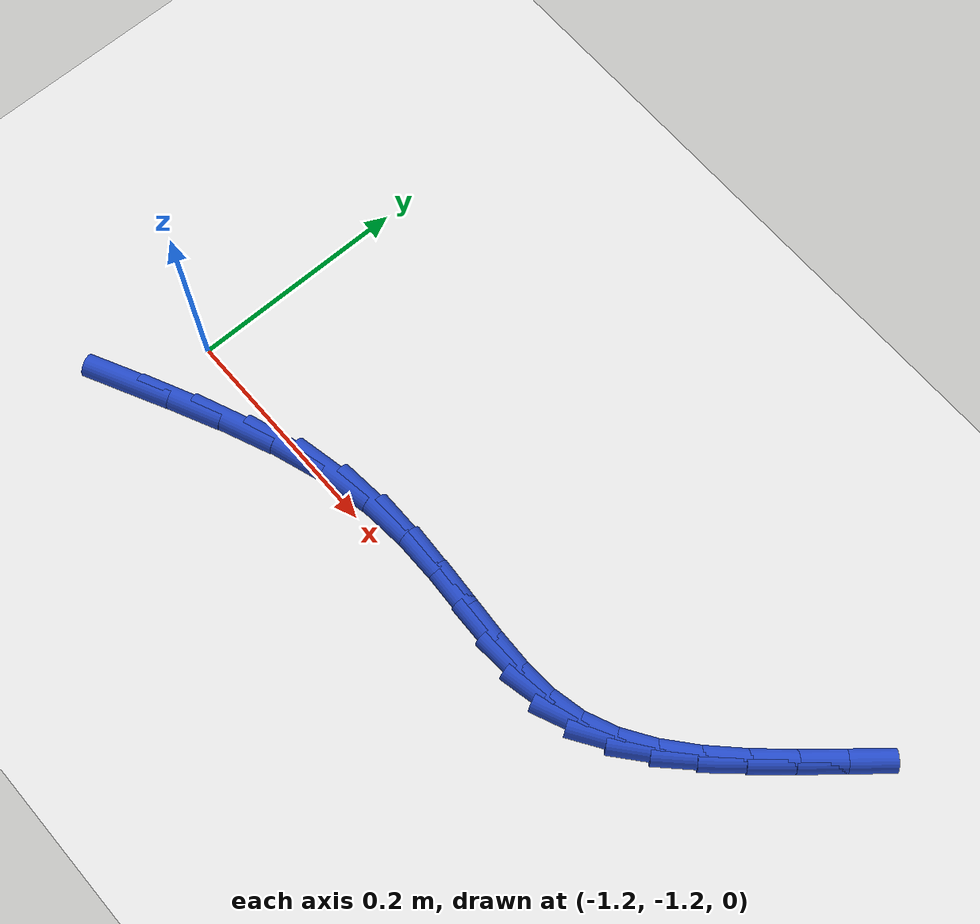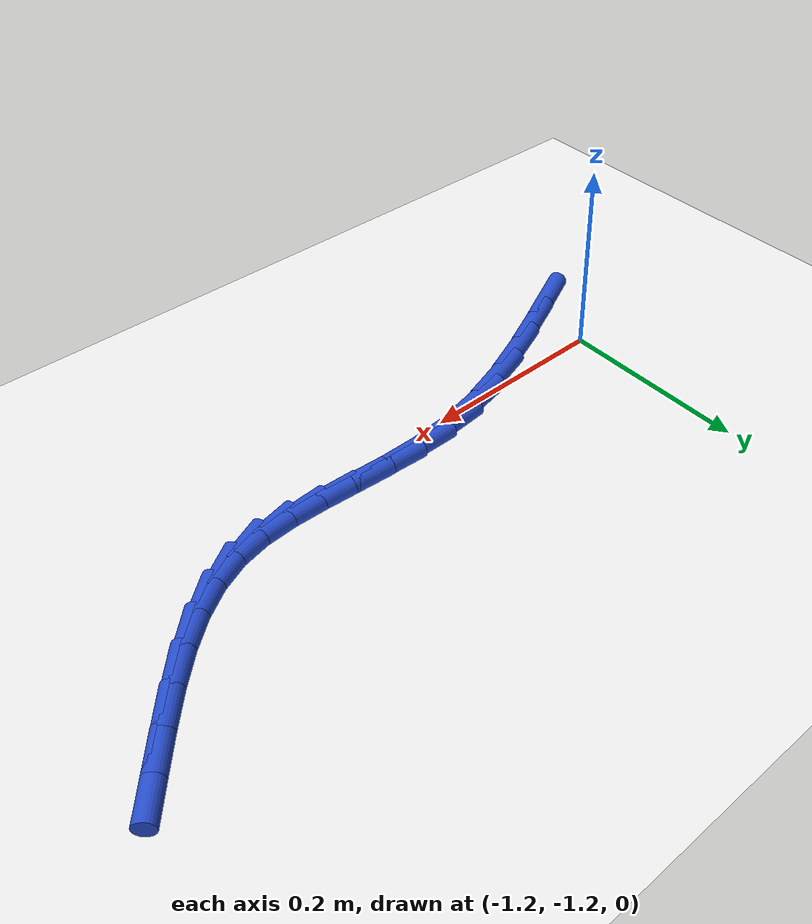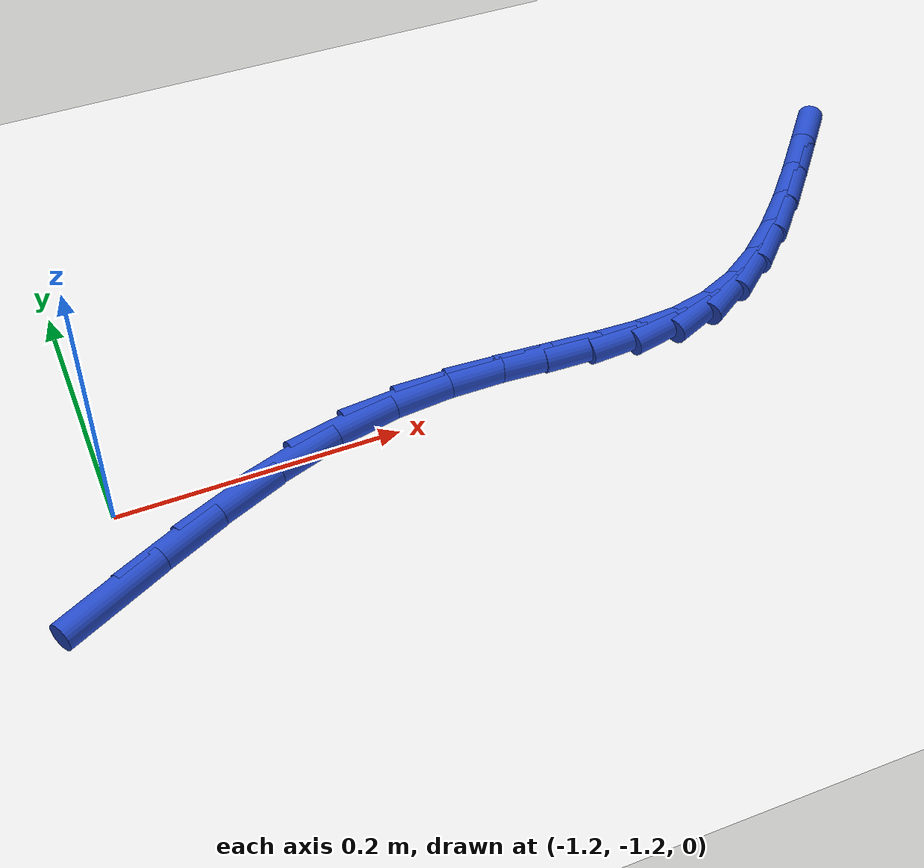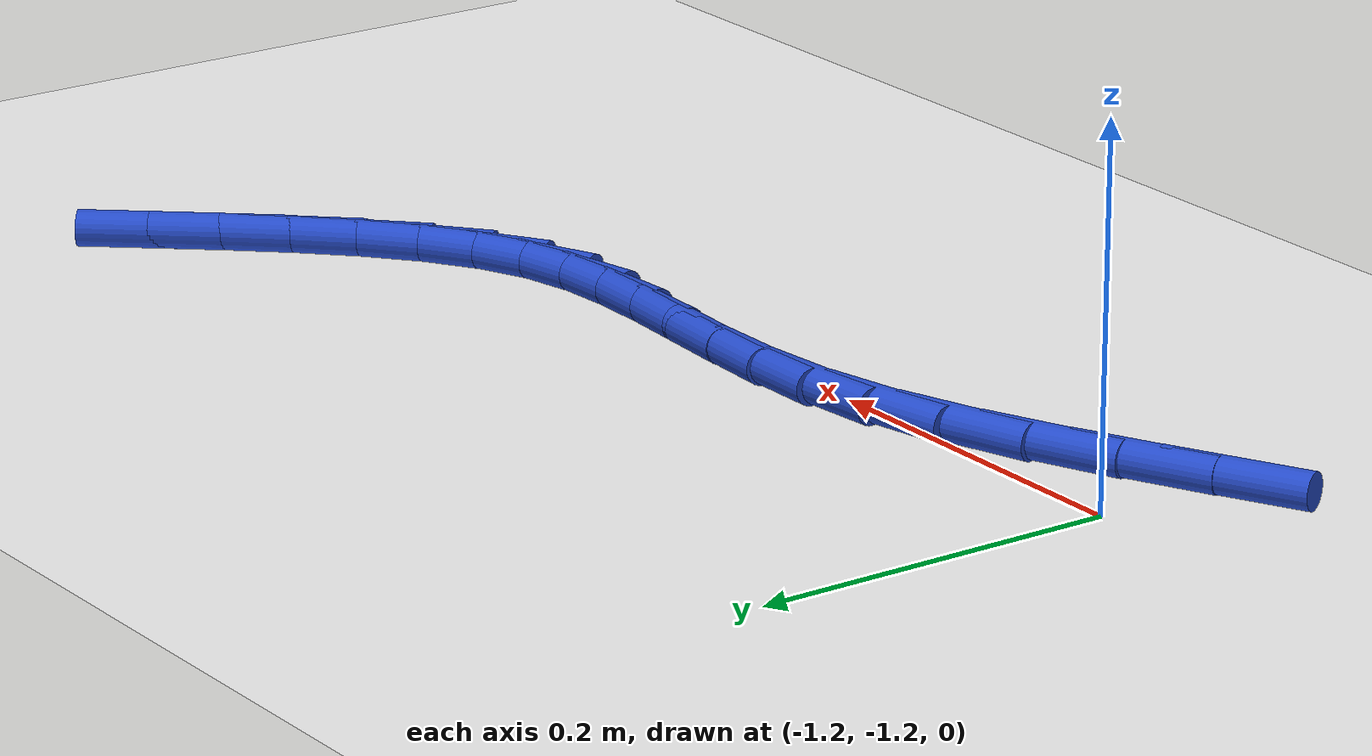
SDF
<sdf version="1.6">
 <world name="default">
  <model name="ground_plane">
   <static>1</static>
   <link name="link">
    <collision name="collision">
     <geometry><plane><normal>0 0 1</normal><size>100 100</size></plane></geometry>
     <surface><friction><ode><mu>100</mu><mu2>50</mu2></ode></friction></surface>
    </collision>
    <visual name="visual">
     <cast_shadows>0</cast_shadows>
     <geometry><plane><normal>0 0 1</normal><size>100 100</size></plane></geometry>
     <material>
      <script><uri>file://media/materials/scripts/gazebo.material</uri><name>Gazebo/WhiteGlow</name></script>
     </material>
    </visual>
   </link>
  </model>
  <model name="line">
   <link name="link_178">
    <pose>-1.2172061704526245 -1.2700868532360474 0.01 0 1.57 0.46593838643870117</pose>
    <collision name="collision">
     <geometry><cylinder><radius>0.01</radius><length>0.08</length></cylinder></geometry>
    </collision>
    <visual name="visual">
     <material>
      <script><name>Gazebo/Blue</name><uri>file://media/materials/scripts/gazebo.material</uri></script>
     </material>
     <geometry><cylinder><radius>0.01</radius><length>0.08</length></cylinder></geometry>
    </visual>
   </link>
   <link name="link_179">
    <pose>-1.1735992036883311 -1.248158359129858 0.01 0 1.57 0.4461613933362873</pose>
    <collision name="collision">
     <geometry><cylinder><radius>0.01</radius><length>0.08</length></cylinder></geometry>
    </collision>
    <visual name="visual">
     <material>
      <script><name>Gazebo/Blue</name><uri>file://media/materials/scripts/gazebo.material</uri></script>
     </material>
     <geometry><cylinder><radius>0.01</radius><length>0.08</length></cylinder></geometry>
    </visual>
   </link>
   <link name="link_180">
    <pose>-1.1286540239872294 -1.2266597542781894 0.01 0 1.57 0.4007375895661252</pose>
    <collision name="collision">
     <geometry><cylinder><radius>0.01</radius><length>0.08</length></cylinder></geometry>
    </collision>
    <visual name="visual">
     <material>
      <script><name>Gazebo/Blue</name><uri>file://media/materials/scripts/gazebo.material</uri></script>
     </material>
     <geometry><cylinder><radius>0.01</radius><length>0.08</length></cylinder></geometry>
    </visual>
   </link>
   <link name="link_181">
    <pose>-1.083428056652124 -1.2074991885877393 0.01 0 1.57 0.3237321753933161</pose>
    <collision name="collision">
     <geometry><cylinder><radius>0.01</radius><length>0.08</length></cylinder></geometry>
    </collision>
    <visual name="visual">
     <material>
      <script><name>Gazebo/Blue</name><uri>file://media/materials/scripts/gazebo.material</uri></script>
     </material>
     <geometry><cylinder><radius>0.01</radius><length>0.08</length></cylinder></geometry>
    </visual>
   </link>
   <link name="link_182">
    <pose>-1.0389787269858226 -1.1925848119652058 0.01 0 1.57 0.2084069801104706</pose>
    <collision name="collision">
     <geometry><cylinder><radius>0.01</radius><length>0.08</length></cylinder></geometry>
    </collision>
    <visual name="visual">
     <material>
      <script><name>Gazebo/Blue</name><uri>file://media/materials/scripts/gazebo.material</uri></script>
     </material>
     <geometry><cylinder><radius>0.01</radius><length>0.08</length></cylinder></geometry>
    </visual>
   </link>
   <link name="link_183">
    <pose>-0.996276733329027 -1.1835542960652907 0.01 0 1.57 0.09111500798717047</pose>
    <collision name="collision">
     <geometry><cylinder><radius>0.01</radius><length>0.08</length></cylinder></geometry>
    </collision>
    <visual name="visual">
     <material>
      <script><name>Gazebo/Blue</name><uri>file://media/materials/scripts/gazebo.material</uri></script>
     </material>
     <geometry><cylinder><radius>0.01</radius><length>0.08</length></cylinder></geometry>
    </visual>
   </link>
   <link name="link_184">
    <pose>-0.9555844780492114 -1.179836326408678 0.01 0 1.57 0.0014289939878220001</pose>
    <collision name="collision">
     <geometry><cylinder><radius>0.01</radius><length>0.08</length></cylinder></geometry>
    </collision>
    <visual name="visual">
     <material>
      <script><name>Gazebo/Blue</name><uri>file://media/materials/scripts/gazebo.material</uri></script>
     </material>
     <geometry><cylinder><radius>0.01</radius><length>0.08</length></cylinder></geometry>
    </visual>
   </link>
   <link name="link_185">
    <pose>-0.9168184992020377 -1.1797809300202664 0.01 0 1.57 -0.05275734739245581</pose>
    <collision name="collision">
     <geometry><cylinder><radius>0.01</radius><length>0.08</length></cylinder></geometry>
    </collision>
    <visual name="visual">
     <material>
      <script><name>Gazebo/Blue</name><uri>file://media/materials/scripts/gazebo.material</uri></script>
     </material>
     <geometry><cylinder><radius>0.01</radius><length>0.08</length></cylinder></geometry>
    </visual>
   </link>
   <link name="link_186">
    <pose>-0.8798929932683748 -1.1817308311780286 0.01 0 1.57 -0.06524330291479186</pose>
    <collision name="collision">
     <geometry><cylinder><radius>0.01</radius><length>0.08</length></cylinder></geometry>
    </collision>
    <visual name="visual">
     <material>
      <script><name>Gazebo/Blue</name><uri>file://media/materials/scripts/gazebo.material</uri></script>
     </material>
     <geometry><cylinder><radius>0.01</radius><length>0.08</length></cylinder></geometry>
    </visual>
   </link>
   <link name="link_187">
    <pose>-0.8447221567290927 -1.184028754159937 0.01 0 1.57 -0.02950221161217422</pose>
    <collision name="collision">
     <geometry><cylinder><radius>0.01</radius><length>0.08</length></cylinder></geometry>
    </collision>
    <visual name="visual">
     <material>
      <script><name>Gazebo/Blue</name><uri>file://media/materials/scripts/gazebo.material</uri></script>
     </material>
     <geometry><cylinder><radius>0.01</radius><length>0.08</length></cylinder></geometry>
    </visual>
   </link>
   <link name="link_188">
    <pose>-0.8112201860650611 -1.1850174232439648 0.01 0 1.57 0.061886041995726275</pose>
    <collision name="collision">
     <geometry><cylinder><radius>0.01</radius><length>0.08</length></cylinder></geometry>
    </collision>
    <visual name="visual">
     <material>
      <script><name>Gazebo/Blue</name><uri>file://media/materials/scripts/gazebo.material</uri></script>
     </material>
     <geometry><cylinder><radius>0.01</radius><length>0.08</length></cylinder></geometry>
    </visual>
   </link>
   <link name="link_189">
    <pose>-0.779301277757152 -1.1830395627080845 0.01 0 1.57 0.21369227924589665</pose>
    <collision name="collision">
     <geometry><cylinder><radius>0.01</radius><length>0.08</length></cylinder></geometry>
    </collision>
    <visual name="visual">
     <material>
      <script><name>Gazebo/Blue</name><uri>file://media/materials/scripts/gazebo.material</uri></script>
     </material>
     <geometry><cylinder><radius>0.01</radius><length>0.08</length></cylinder></geometry>
    </visual>
   </link>
   <link name="link_190">
    <pose>-0.7488796282862348 -1.176437896830269 0.01 0 1.57 0.40959682759193405</pose>
    <collision name="collision">
     <geometry><cylinder><radius>0.01</radius><length>0.08</length></cylinder></geometry>
    </collision>
    <visual name="visual">
     <material>
      <script><name>Gazebo/Blue</name><uri>file://media/materials/scripts/gazebo.material</uri></script>
     </material>
     <geometry><cylinder><radius>0.01</radius><length>0.08</length></cylinder></geometry>
    </visual>
   </link>
   <link name="link_191">
    <pose>-0.7198550991207601 -1.1638368407457615 0.01 0 1.57 0.5795974146995009</pose>
    <collision name="collision">
     <geometry><cylinder><radius>0.01</radius><length>0.08</length></cylinder></geometry>
    </collision>
    <visual name="visual">
     <material>
      <script><name>Gazebo/Blue</name><uri>file://media/materials/scripts/gazebo.material</uri></script>
     </material>
     <geometry><cylinder><radius>0.01</radius><length>0.08</length></cylinder></geometry>
    </visual>
   </link>
   <link name="link_192">
    <pose>-0.6920376352436932 -1.1456277178517285 0.01 0 1.57 0.7030290427852016</pose>
    <collision name="collision">
     <geometry><cylinder><radius>0.01</radius><length>0.08</length></cylinder></geometry>
    </collision>
    <visual name="visual">
     <material>
      <script><name>Gazebo/Blue</name><uri>file://media/materials/scripts/gazebo.material</uri></script>
     </material>
     <geometry><cylinder><radius>0.01</radius><length>0.08</length></cylinder></geometry>
    </visual>
   </link>
   <link name="link_193">
    <pose>-0.6652023964576816 -1.1228853994194448 0.01 0 1.57 0.7877172230392703</pose>
    <collision name="collision">
     <geometry><cylinder><radius>0.01</radius><length>0.08</length></cylinder></geometry>
    </collision>
    <visual name="visual">
     <material>
      <script><name>Gazebo/Blue</name><uri>file://media/materials/scripts/gazebo.material</uri></script>
     </material>
     <geometry><cylinder><radius>0.01</radius><length>0.08</length></cylinder></geometry>
    </visual>
   </link>
   <link name="link_194">
    <pose>-0.6391244672698062 -1.0966862363193188 0.01 0 1.57 0.841397033795143</pose>
    <collision name="collision">
     <geometry><cylinder><radius>0.01</radius><length>0.08</length></cylinder></geometry>
    </collision>
    <visual name="visual">
     <material>
      <script><name>Gazebo/Blue</name><uri>file://media/materials/scripts/gazebo.material</uri></script>
     </material>
     <geometry><cylinder><radius>0.01</radius><length>0.08</length></cylinder></geometry>
    </visual>
   </link>
   <link name="link_195">
    <pose>-0.6135789321871487 -1.0681065794217586 0.01 0 1.57 0.869480779795268</pose>
    <collision name="collision">
     <geometry><cylinder><radius>0.01</radius><length>0.08</length></cylinder></geometry>
    </collision>
    <visual name="visual">
     <material>
      <script><name>Gazebo/Blue</name><uri>file://media/materials/scripts/gazebo.material</uri></script>
     </material>
     <geometry><cylinder><radius>0.01</radius><length>0.08</length></cylinder></geometry>
    </visual>
   </link>
   <link name="link_196">
    <pose>-0.5883408757167905 -1.0382227795971721 0.01 0 1.57 0.8748343463668563</pose>
    <collision name="collision">
     <geometry><cylinder><radius>0.01</radius><length>0.08</length></cylinder></geometry>
    </collision>
    <visual name="visual">
     <material>
      <script><name>Gazebo/Blue</name><uri>file://media/materials/scripts/gazebo.material</uri></script>
     </material>
     <geometry><cylinder><radius>0.01</radius><length>0.08</length></cylinder></geometry>
    </visual>
   </link>
  </model>
 </world>
</sdf>
